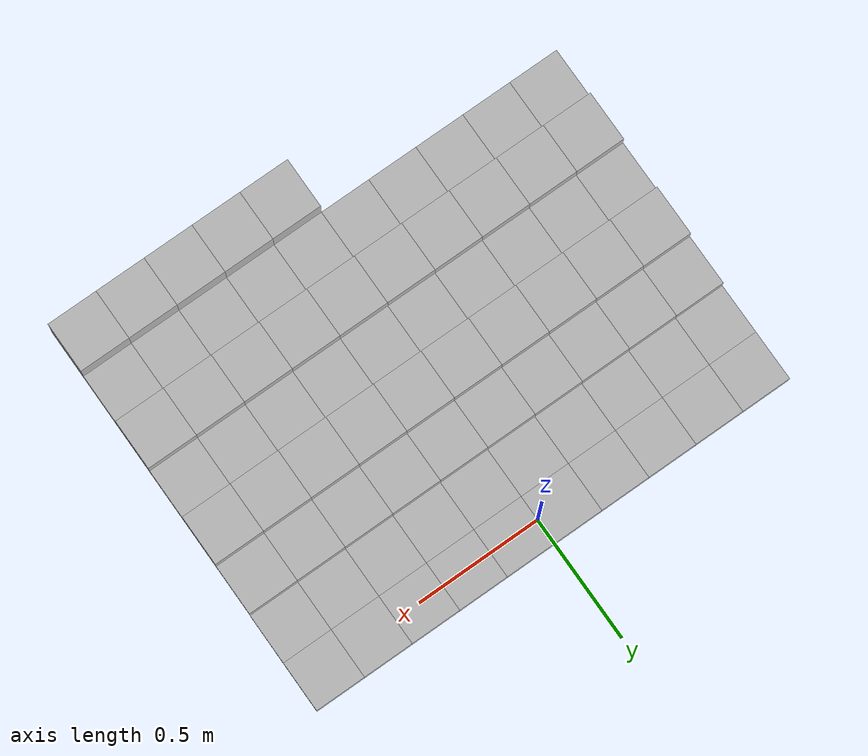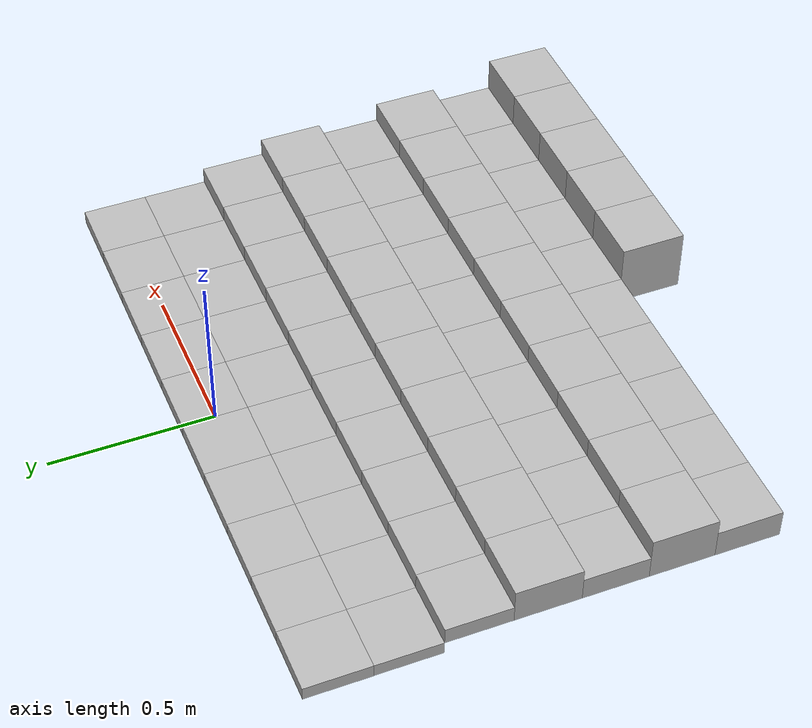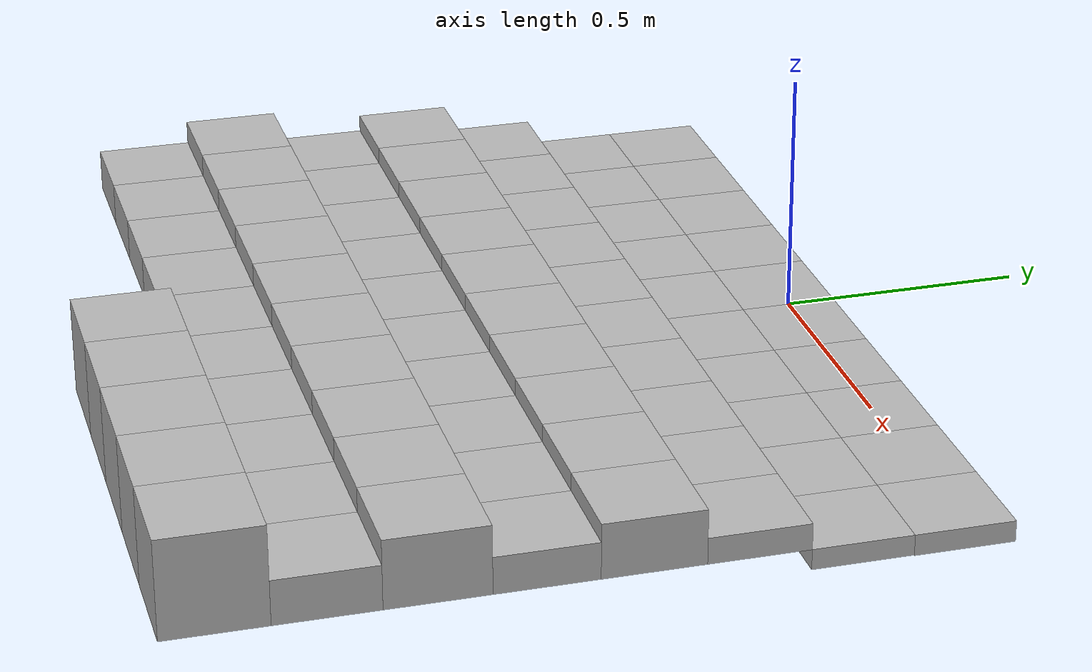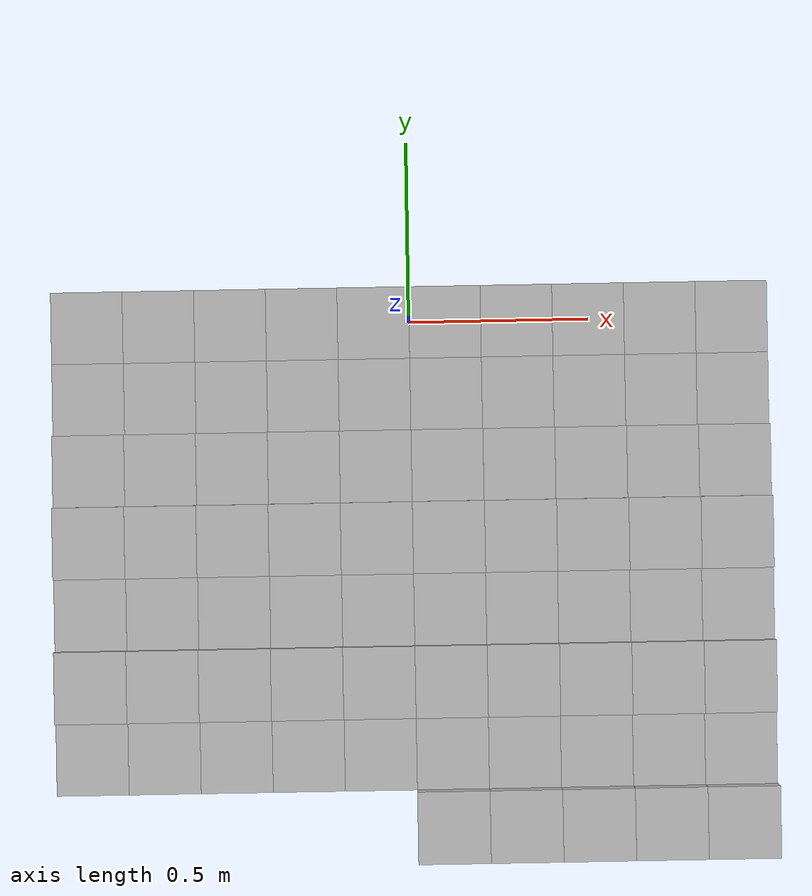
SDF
<sdf version="1.6">
 <model name="Terrain">
  <static>true</static>
  <link name="box_0_0">
   <pose>-0.9 0.0 -0.0216415756168 0 0 0</pose>
   <inertial>
    <mass>1.0</mass>
    <inertia><ixx>0.0</ixx><ixy>0.0</ixy><ixz>0.0</ixz><iyy>0.0</iyy><iyz>0.0</iyz><izz>0.0</izz></inertia>
   </inertial>
   <collision name="collision"><geometry><box><size>0.2 0.2 -0.0432831512336</size></box></geometry></collision>
   <visual name="visual"><geometry><box><size>0.2 0.2 -0.0432831512336</size></box></geometry></visual>
  </link>
  <link name="box_0_1">
   <pose>-0.7 0.0 -0.0216415756168 0 0 0</pose>
   <inertial>
    <mass>1.0</mass>
    <inertia><ixx>0.0</ixx><ixy>0.0</ixy><ixz>0.0</ixz><iyy>0.0</iyy><iyz>0.0</iyz><izz>0.0</izz></inertia>
   </inertial>
   <collision name="collision"><geometry><box><size>0.2 0.2 -0.0432831512336</size></box></geometry></collision>
   <visual name="visual"><geometry><box><size>0.2 0.2 -0.0432831512336</size></box></geometry></visual>
  </link>
  <link name="box_0_2">
   <pose>-0.5 0.0 -0.0216415756168 0 0 0</pose>
   <inertial>
    <mass>1.0</mass>
    <inertia><ixx>0.0</ixx><ixy>0.0</ixy><ixz>0.0</ixz><iyy>0.0</iyy><iyz>0.0</iyz><izz>0.0</izz></inertia>
   </inertial>
   <collision name="collision"><geometry><box><size>0.2 0.2 -0.0432831512336</size></box></geometry></collision>
   <visual name="visual"><geometry><box><size>0.2 0.2 -0.0432831512336</size></box></geometry></visual>
  </link>
  <link name="box_0_3">
   <pose>-0.3 0.0 -0.0216415756168 0 0 0</pose>
   <inertial>
    <mass>1.0</mass>
    <inertia><ixx>0.0</ixx><ixy>0.0</ixy><ixz>0.0</ixz><iyy>0.0</iyy><iyz>0.0</iyz><izz>0.0</izz></inertia>
   </inertial>
   <collision name="collision"><geometry><box><size>0.2 0.2 -0.0432831512336</size></box></geometry></collision>
   <visual name="visual"><geometry><box><size>0.2 0.2 -0.0432831512336</size></box></geometry></visual>
  </link>
  <link name="box_0_4">
   <pose>-0.1 0.0 -0.0216415756168 0 0 0</pose>
   <inertial>
    <mass>1.0</mass>
    <inertia><ixx>0.0</ixx><ixy>0.0</ixy><ixz>0.0</ixz><iyy>0.0</iyy><iyz>0.0</iyz><izz>0.0</izz></inertia>
   </inertial>
   <collision name="collision"><geometry><box><size>0.2 0.2 -0.0432831512336</size></box></geometry></collision>
   <visual name="visual"><geometry><box><size>0.2 0.2 -0.0432831512336</size></box></geometry></visual>
  </link>
  <link name="box_0_5">
   <pose>0.1 0.0 -0.0216415756168 0 0 0</pose>
   <inertial>
    <mass>1.0</mass>
    <inertia><ixx>0.0</ixx><ixy>0.0</ixy><ixz>0.0</ixz><iyy>0.0</iyy><iyz>0.0</iyz><izz>0.0</izz></inertia>
   </inertial>
   <collision name="collision"><geometry><box><size>0.2 0.2 -0.0432831512336</size></box></geometry></collision>
   <visual name="visual"><geometry><box><size>0.2 0.2 -0.0432831512336</size></box></geometry></visual>
  </link>
  <link name="box_0_6">
   <pose>0.3 0.0 -0.0216415756168 0 0 0</pose>
   <inertial>
    <mass>1.0</mass>
    <inertia><ixx>0.0</ixx><ixy>0.0</ixy><ixz>0.0</ixz><iyy>0.0</iyy><iyz>0.0</iyz><izz>0.0</izz></inertia>
   </inertial>
   <collision name="collision"><geometry><box><size>0.2 0.2 -0.0432831512336</size></box></geometry></collision>
   <visual name="visual"><geometry><box><size>0.2 0.2 -0.0432831512336</size></box></geometry></visual>
  </link>
  <link name="box_0_7">
   <pose>0.5 0.0 -0.0216415756168 0 0 0</pose>
   <inertial>
    <mass>1.0</mass>
    <inertia><ixx>0.0</ixx><ixy>0.0</ixy><ixz>0.0</ixz><iyy>0.0</iyy><iyz>0.0</iyz><izz>0.0</izz></inertia>
   </inertial>
   <collision name="collision"><geometry><box><size>0.2 0.2 -0.0432831512336</size></box></geometry></collision>
   <visual name="visual"><geometry><box><size>0.2 0.2 -0.0432831512336</size></box></geometry></visual>
  </link>
  <link name="box_0_8">
   <pose>0.7 0.0 -0.0216415756168 0 0 0</pose>
   <inertial>
    <mass>1.0</mass>
    <inertia><ixx>0.0</ixx><ixy>0.0</ixy><ixz>0.0</ixz><iyy>0.0</iyy><iyz>0.0</iyz><izz>0.0</izz></inertia>
   </inertial>
   <collision name="collision"><geometry><box><size>0.2 0.2 -0.0432831512336</size></box></geometry></collision>
   <visual name="visual"><geometry><box><size>0.2 0.2 -0.0432831512336</size></box></geometry></visual>
  </link>
  <link name="box_0_9">
   <pose>0.9 0.0 -0.0216415756168 0 0 0</pose>
   <inertial>
    <mass>1.0</mass>
    <inertia><ixx>0.0</ixx><ixy>0.0</ixy><ixz>0.0</ixz><iyy>0.0</iyy><iyz>0.0</iyz><izz>0.0</izz></inertia>
   </inertial>
   <collision name="collision"><geometry><box><size>0.2 0.2 -0.0432831512336</size></box></geometry></collision>
   <visual name="visual"><geometry><box><size>0.2 0.2 -0.0432831512336</size></box></geometry></visual>
  </link>
  <link name="box_1_0">
   <pose>-0.9 -0.2 -0.0210327159293 0 0 0</pose>
   <inertial>
    <mass>1.0</mass>
    <inertia><ixx>0.0</ixx><ixy>0.0</ixy><ixz>0.0</ixz><iyy>0.0</iyy><iyz>0.0</iyz><izz>0.0</izz></inertia>
   </inertial>
   <collision name="collision"><geometry><box><size>0.2 0.2 -0.0420654318587</size></box></geometry></collision>
   <visual name="visual"><geometry><box><size>0.2 0.2 -0.0420654318587</size></box></geometry></visual>
  </link>
  <link name="box_1_1">
   <pose>-0.7 -0.2 -0.0210327159293 0 0 0</pose>
   <inertial>
    <mass>1.0</mass>
    <inertia><ixx>0.0</ixx><ixy>0.0</ixy><ixz>0.0</ixz><iyy>0.0</iyy><iyz>0.0</iyz><izz>0.0</izz></inertia>
   </inertial>
   <collision name="collision"><geometry><box><size>0.2 0.2 -0.0420654318587</size></box></geometry></collision>
   <visual name="visual"><geometry><box><size>0.2 0.2 -0.0420654318587</size></box></geometry></visual>
  </link>
  <link name="box_1_2">
   <pose>-0.5 -0.2 -0.0210327159293 0 0 0</pose>
   <inertial>
    <mass>1.0</mass>
    <inertia><ixx>0.0</ixx><ixy>0.0</ixy><ixz>0.0</ixz><iyy>0.0</iyy><iyz>0.0</iyz><izz>0.0</izz></inertia>
   </inertial>
   <collision name="collision"><geometry><box><size>0.2 0.2 -0.0420654318587</size></box></geometry></collision>
   <visual name="visual"><geometry><box><size>0.2 0.2 -0.0420654318587</size></box></geometry></visual>
  </link>
  <link name="box_1_3">
   <pose>-0.3 -0.2 -0.0210327159293 0 0 0</pose>
   <inertial>
    <mass>1.0</mass>
    <inertia><ixx>0.0</ixx><ixy>0.0</ixy><ixz>0.0</ixz><iyy>0.0</iyy><iyz>0.0</iyz><izz>0.0</izz></inertia>
   </inertial>
   <collision name="collision"><geometry><box><size>0.2 0.2 -0.0420654318587</size></box></geometry></collision>
   <visual name="visual"><geometry><box><size>0.2 0.2 -0.0420654318587</size></box></geometry></visual>
  </link>
  <link name="box_1_4">
   <pose>-0.1 -0.2 -0.0210327159293 0 0 0</pose>
   <inertial>
    <mass>1.0</mass>
    <inertia><ixx>0.0</ixx><ixy>0.0</ixy><ixz>0.0</ixz><iyy>0.0</iyy><iyz>0.0</iyz><izz>0.0</izz></inertia>
   </inertial>
   <collision name="collision"><geometry><box><size>0.2 0.2 -0.0420654318587</size></box></geometry></collision>
   <visual name="visual"><geometry><box><size>0.2 0.2 -0.0420654318587</size></box></geometry></visual>
  </link>
  <link name="box_1_5">
   <pose>0.1 -0.2 -0.0210327159293 0 0 0</pose>
   <inertial>
    <mass>1.0</mass>
    <inertia><ixx>0.0</ixx><ixy>0.0</ixy><ixz>0.0</ixz><iyy>0.0</iyy><iyz>0.0</iyz><izz>0.0</izz></inertia>
   </inertial>
   <collision name="collision"><geometry><box><size>0.2 0.2 -0.0420654318587</size></box></geometry></collision>
   <visual name="visual"><geometry><box><size>0.2 0.2 -0.0420654318587</size></box></geometry></visual>
  </link>
  <link name="box_1_6">
   <pose>0.3 -0.2 -0.0210327159293 0 0 0</pose>
   <inertial>
    <mass>1.0</mass>
    <inertia><ixx>0.0</ixx><ixy>0.0</ixy><ixz>0.0</ixz><iyy>0.0</iyy><iyz>0.0</iyz><izz>0.0</izz></inertia>
   </inertial>
   <collision name="collision"><geometry><box><size>0.2 0.2 -0.0420654318587</size></box></geometry></collision>
   <visual name="visual"><geometry><box><size>0.2 0.2 -0.0420654318587</size></box></geometry></visual>
  </link>
  <link name="box_1_7">
   <pose>0.5 -0.2 -0.0210327159293 0 0 0</pose>
   <inertial>
    <mass>1.0</mass>
    <inertia><ixx>0.0</ixx><ixy>0.0</ixy><ixz>0.0</ixz><iyy>0.0</iyy><iyz>0.0</iyz><izz>0.0</izz></inertia>
   </inertial>
   <collision name="collision"><geometry><box><size>0.2 0.2 -0.0420654318587</size></box></geometry></collision>
   <visual name="visual"><geometry><box><size>0.2 0.2 -0.0420654318587</size></box></geometry></visual>
  </link>
  <link name="box_1_8">
   <pose>0.7 -0.2 -0.0210327159293 0 0 0</pose>
   <inertial>
    <mass>1.0</mass>
    <inertia><ixx>0.0</ixx><ixy>0.0</ixy><ixz>0.0</ixz><iyy>0.0</iyy><iyz>0.0</iyz><izz>0.0</izz></inertia>
   </inertial>
   <collision name="collision"><geometry><box><size>0.2 0.2 -0.0420654318587</size></box></geometry></collision>
   <visual name="visual"><geometry><box><size>0.2 0.2 -0.0420654318587</size></box></geometry></visual>
  </link>
  <link name="box_1_9">
   <pose>0.9 -0.2 -0.0210327159293 0 0 0</pose>
   <inertial>
    <mass>1.0</mass>
    <inertia><ixx>0.0</ixx><ixy>0.0</ixy><ixz>0.0</ixz><iyy>0.0</iyy><iyz>0.0</iyz><izz>0.0</izz></inertia>
   </inertial>
   <collision name="collision"><geometry><box><size>0.2 0.2 -0.0420654318587</size></box></geometry></collision>
   <visual name="visual"><geometry><box><size>0.2 0.2 -0.0420654318587</size></box></geometry></visual>
  </link>
  <link name="box_2_0">
   <pose>-0.9 -0.4 0.0268966023082 0 0 0</pose>
   <inertial>
    <mass>1.0</mass>
    <inertia><ixx>0.0</ixx><ixy>0.0</ixy><ixz>0.0</ixz><iyy>0.0</iyy><iyz>0.0</iyz><izz>0.0</izz></inertia>
   </inertial>
   <collision name="collision"><geometry><box><size>0.2 0.2 0.0537932046164</size></box></geometry></collision>
   <visual name="visual"><geometry><box><size>0.2 0.2 0.0537932046164</size></box></geometry></visual>
  </link>
  <link name="box_2_1">
   <pose>-0.7 -0.4 0.0268966023082 0 0 0</pose>
   <inertial>
    <mass>1.0</mass>
    <inertia><ixx>0.0</ixx><ixy>0.0</ixy><ixz>0.0</ixz><iyy>0.0</iyy><iyz>0.0</iyz><izz>0.0</izz></inertia>
   </inertial>
   <collision name="collision"><geometry><box><size>0.2 0.2 0.0537932046164</size></box></geometry></collision>
   <visual name="visual"><geometry><box><size>0.2 0.2 0.0537932046164</size></box></geometry></visual>
  </link>
  <link name="box_2_2">
   <pose>-0.5 -0.4 0.0268966023082 0 0 0</pose>
   <inertial>
    <mass>1.0</mass>
    <inertia><ixx>0.0</ixx><ixy>0.0</ixy><ixz>0.0</ixz><iyy>0.0</iyy><iyz>0.0</iyz><izz>0.0</izz></inertia>
   </inertial>
   <collision name="collision"><geometry><box><size>0.2 0.2 0.0537932046164</size></box></geometry></collision>
   <visual name="visual"><geometry><box><size>0.2 0.2 0.0537932046164</size></box></geometry></visual>
  </link>
  <link name="box_2_3">
   <pose>-0.3 -0.4 0.0268966023082 0 0 0</pose>
   <inertial>
    <mass>1.0</mass>
    <inertia><ixx>0.0</ixx><ixy>0.0</ixy><ixz>0.0</ixz><iyy>0.0</iyy><iyz>0.0</iyz><izz>0.0</izz></inertia>
   </inertial>
   <collision name="collision"><geometry><box><size>0.2 0.2 0.0537932046164</size></box></geometry></collision>
   <visual name="visual"><geometry><box><size>0.2 0.2 0.0537932046164</size></box></geometry></visual>
  </link>
  <link name="box_2_4">
   <pose>-0.1 -0.4 0.0268966023082 0 0 0</pose>
   <inertial>
    <mass>1.0</mass>
    <inertia><ixx>0.0</ixx><ixy>0.0</ixy><ixz>0.0</ixz><iyy>0.0</iyy><iyz>0.0</iyz><izz>0.0</izz></inertia>
   </inertial>
   <collision name="collision"><geometry><box><size>0.2 0.2 0.0537932046164</size></box></geometry></collision>
   <visual name="visual"><geometry><box><size>0.2 0.2 0.0537932046164</size></box></geometry></visual>
  </link>
  <link name="box_2_5">
   <pose>0.1 -0.4 0.0268966023082 0 0 0</pose>
   <inertial>
    <mass>1.0</mass>
    <inertia><ixx>0.0</ixx><ixy>0.0</ixy><ixz>0.0</ixz><iyy>0.0</iyy><iyz>0.0</iyz><izz>0.0</izz></inertia>
   </inertial>
   <collision name="collision"><geometry><box><size>0.2 0.2 0.0537932046164</size></box></geometry></collision>
   <visual name="visual"><geometry><box><size>0.2 0.2 0.0537932046164</size></box></geometry></visual>
  </link>
  <link name="box_2_6">
   <pose>0.3 -0.4 0.0268966023082 0 0 0</pose>
   <inertial>
    <mass>1.0</mass>
    <inertia><ixx>0.0</ixx><ixy>0.0</ixy><ixz>0.0</ixz><iyy>0.0</iyy><iyz>0.0</iyz><izz>0.0</izz></inertia>
   </inertial>
   <collision name="collision"><geometry><box><size>0.2 0.2 0.0537932046164</size></box></geometry></collision>
   <visual name="visual"><geometry><box><size>0.2 0.2 0.0537932046164</size></box></geometry></visual>
  </link>
  <link name="box_2_7">
   <pose>0.5 -0.4 0.0268966023082 0 0 0</pose>
   <inertial>
    <mass>1.0</mass>
    <inertia><ixx>0.0</ixx><ixy>0.0</ixy><ixz>0.0</ixz><iyy>0.0</iyy><iyz>0.0</iyz><izz>0.0</izz></inertia>
   </inertial>
   <collision name="collision"><geometry><box><size>0.2 0.2 0.0537932046164</size></box></geometry></collision>
   <visual name="visual"><geometry><box><size>0.2 0.2 0.0537932046164</size></box></geometry></visual>
  </link>
  <link name="box_2_8">
   <pose>0.7 -0.4 0.0268966023082 0 0 0</pose>
   <inertial>
    <mass>1.0</mass>
    <inertia><ixx>0.0</ixx><ixy>0.0</ixy><ixz>0.0</ixz><iyy>0.0</iyy><iyz>0.0</iyz><izz>0.0</izz></inertia>
   </inertial>
   <collision name="collision"><geometry><box><size>0.2 0.2 0.0537932046164</size></box></geometry></collision>
   <visual name="visual"><geometry><box><size>0.2 0.2 0.0537932046164</size></box></geometry></visual>
  </link>
  <link name="box_2_9">
   <pose>0.9 -0.4 0.0268966023082 0 0 0</pose>
   <inertial>
    <mass>1.0</mass>
    <inertia><ixx>0.0</ixx><ixy>0.0</ixy><ixz>0.0</ixz><iyy>0.0</iyy><iyz>0.0</iyz><izz>0.0</izz></inertia>
   </inertial>
   <collision name="collision"><geometry><box><size>0.2 0.2 0.0537932046164</size></box></geometry></collision>
   <visual name="visual"><geometry><box><size>0.2 0.2 0.0537932046164</size></box></geometry></visual>
  </link>
  <link name="box_3_0">
   <pose>-0.9 -0.6 0.0562313552899 0 0 0</pose>
   <inertial>
    <mass>1.0</mass>
    <inertia><ixx>0.0</ixx><ixy>0.0</ixy><ixz>0.0</ixz><iyy>0.0</iyy><iyz>0.0</iyz><izz>0.0</izz></inertia>
   </inertial>
   <collision name="collision"><geometry><box><size>0.2 0.2 0.11246271058</size></box></geometry></collision>
   <visual name="visual"><geometry><box><size>0.2 0.2 0.11246271058</size></box></geometry></visual>
  </link>
  <link name="box_3_1">
   <pose>-0.7 -0.6 0.0562313552899 0 0 0</pose>
   <inertial>
    <mass>1.0</mass>
    <inertia><ixx>0.0</ixx><ixy>0.0</ixy><ixz>0.0</ixz><iyy>0.0</iyy><iyz>0.0</iyz><izz>0.0</izz></inertia>
   </inertial>
   <collision name="collision"><geometry><box><size>0.2 0.2 0.11246271058</size></box></geometry></collision>
   <visual name="visual"><geometry><box><size>0.2 0.2 0.11246271058</size></box></geometry></visual>
  </link>
  <link name="box_3_2">
   <pose>-0.5 -0.6 0.0562313552899 0 0 0</pose>
   <inertial>
    <mass>1.0</mass>
    <inertia><ixx>0.0</ixx><ixy>0.0</ixy><ixz>0.0</ixz><iyy>0.0</iyy><iyz>0.0</iyz><izz>0.0</izz></inertia>
   </inertial>
   <collision name="collision"><geometry><box><size>0.2 0.2 0.11246271058</size></box></geometry></collision>
   <visual name="visual"><geometry><box><size>0.2 0.2 0.11246271058</size></box></geometry></visual>
  </link>
  <link name="box_3_3">
   <pose>-0.3 -0.6 0.0562313552899 0 0 0</pose>
   <inertial>
    <mass>1.0</mass>
    <inertia><ixx>0.0</ixx><ixy>0.0</ixy><ixz>0.0</ixz><iyy>0.0</iyy><iyz>0.0</iyz><izz>0.0</izz></inertia>
   </inertial>
   <collision name="collision"><geometry><box><size>0.2 0.2 0.11246271058</size></box></geometry></collision>
   <visual name="visual"><geometry><box><size>0.2 0.2 0.11246271058</size></box></geometry></visual>
  </link>
  <link name="box_3_4">
   <pose>-0.1 -0.6 0.0562313552899 0 0 0</pose>
   <inertial>
    <mass>1.0</mass>
    <inertia><ixx>0.0</ixx><ixy>0.0</ixy><ixz>0.0</ixz><iyy>0.0</iyy><iyz>0.0</iyz><izz>0.0</izz></inertia>
   </inertial>
   <collision name="collision"><geometry><box><size>0.2 0.2 0.11246271058</size></box></geometry></collision>
   <visual name="visual"><geometry><box><size>0.2 0.2 0.11246271058</size></box></geometry></visual>
  </link>
  <link name="box_3_5">
   <pose>0.1 -0.6 0.0562313552899 0 0 0</pose>
   <inertial>
    <mass>1.0</mass>
    <inertia><ixx>0.0</ixx><ixy>0.0</ixy><ixz>0.0</ixz><iyy>0.0</iyy><iyz>0.0</iyz><izz>0.0</izz></inertia>
   </inertial>
   <collision name="collision"><geometry><box><size>0.2 0.2 0.11246271058</size></box></geometry></collision>
   <visual name="visual"><geometry><box><size>0.2 0.2 0.11246271058</size></box></geometry></visual>
  </link>
  <link name="box_3_6">
   <pose>0.3 -0.6 0.0562313552899 0 0 0</pose>
   <inertial>
    <mass>1.0</mass>
    <inertia><ixx>0.0</ixx><ixy>0.0</ixy><ixz>0.0</ixz><iyy>0.0</iyy><iyz>0.0</iyz><izz>0.0</izz></inertia>
   </inertial>
   <collision name="collision"><geometry><box><size>0.2 0.2 0.11246271058</size></box></geometry></collision>
   <visual name="visual"><geometry><box><size>0.2 0.2 0.11246271058</size></box></geometry></visual>
  </link>
  <link name="box_3_7">
   <pose>0.5 -0.6 0.0562313552899 0 0 0</pose>
   <inertial>
    <mass>1.0</mass>
    <inertia><ixx>0.0</ixx><ixy>0.0</ixy><ixz>0.0</ixz><iyy>0.0</iyy><iyz>0.0</iyz><izz>0.0</izz></inertia>
   </inertial>
   <collision name="collision"><geometry><box><size>0.2 0.2 0.11246271058</size></box></geometry></collision>
   <visual name="visual"><geometry><box><size>0.2 0.2 0.11246271058</size></box></geometry></visual>
  </link>
  <link name="box_3_8">
   <pose>0.7 -0.6 0.0562313552899 0 0 0</pose>
   <inertial>
    <mass>1.0</mass>
    <inertia><ixx>0.0</ixx><ixy>0.0</ixy><ixz>0.0</ixz><iyy>0.0</iyy><iyz>0.0</iyz><izz>0.0</izz></inertia>
   </inertial>
   <collision name="collision"><geometry><box><size>0.2 0.2 0.11246271058</size></box></geometry></collision>
   <visual name="visual"><geometry><box><size>0.2 0.2 0.11246271058</size></box></geometry></visual>
  </link>
  <link name="box_3_9">
   <pose>0.9 -0.6 0.0562313552899 0 0 0</pose>
   <inertial>
    <mass>1.0</mass>
    <inertia><ixx>0.0</ixx><ixy>0.0</ixy><ixz>0.0</ixz><iyy>0.0</iyy><iyz>0.0</iyz><izz>0.0</izz></inertia>
   </inertial>
   <collision name="collision"><geometry><box><size>0.2 0.2 0.11246271058</size></box></geometry></collision>
   <visual name="visual"><geometry><box><size>0.2 0.2 0.11246271058</size></box></geometry></visual>
  </link>
  <link name="box_4_0">
   <pose>-0.9 -0.8 0.0378319859019 0 0 0</pose>
   <inertial>
    <mass>1.0</mass>
    <inertia><ixx>0.0</ixx><ixy>0.0</ixy><ixz>0.0</ixz><iyy>0.0</iyy><iyz>0.0</iyz><izz>0.0</izz></inertia>
   </inertial>
   <collision name="collision"><geometry><box><size>0.2 0.2 0.0756639718039</size></box></geometry></collision>
   <visual name="visual"><geometry><box><size>0.2 0.2 0.0756639718039</size></box></geometry></visual>
  </link>
  <link name="box_4_1">
   <pose>-0.7 -0.8 0.0378319859019 0 0 0</pose>
   <inertial>
    <mass>1.0</mass>
    <inertia><ixx>0.0</ixx><ixy>0.0</ixy><ixz>0.0</ixz><iyy>0.0</iyy><iyz>0.0</iyz><izz>0.0</izz></inertia>
   </inertial>
   <collision name="collision"><geometry><box><size>0.2 0.2 0.0756639718039</size></box></geometry></collision>
   <visual name="visual"><geometry><box><size>0.2 0.2 0.0756639718039</size></box></geometry></visual>
  </link>
  <link name="box_4_2">
   <pose>-0.5 -0.8 0.0378319859019 0 0 0</pose>
   <inertial>
    <mass>1.0</mass>
    <inertia><ixx>0.0</ixx><ixy>0.0</ixy><ixz>0.0</ixz><iyy>0.0</iyy><iyz>0.0</iyz><izz>0.0</izz></inertia>
   </inertial>
   <collision name="collision"><geometry><box><size>0.2 0.2 0.0756639718039</size></box></geometry></collision>
   <visual name="visual"><geometry><box><size>0.2 0.2 0.0756639718039</size></box></geometry></visual>
  </link>
  <link name="box_4_3">
   <pose>-0.3 -0.8 0.0378319859019 0 0 0</pose>
   <inertial>
    <mass>1.0</mass>
    <inertia><ixx>0.0</ixx><ixy>0.0</ixy><ixz>0.0</ixz><iyy>0.0</iyy><iyz>0.0</iyz><izz>0.0</izz></inertia>
   </inertial>
   <collision name="collision"><geometry><box><size>0.2 0.2 0.0756639718039</size></box></geometry></collision>
   <visual name="visual"><geometry><box><size>0.2 0.2 0.0756639718039</size></box></geometry></visual>
  </link>
  <link name="box_4_4">
   <pose>-0.1 -0.8 0.0378319859019 0 0 0</pose>
   <inertial>
    <mass>1.0</mass>
    <inertia><ixx>0.0</ixx><ixy>0.0</ixy><ixz>0.0</ixz><iyy>0.0</iyy><iyz>0.0</iyz><izz>0.0</izz></inertia>
   </inertial>
   <collision name="collision"><geometry><box><size>0.2 0.2 0.0756639718039</size></box></geometry></collision>
   <visual name="visual"><geometry><box><size>0.2 0.2 0.0756639718039</size></box></geometry></visual>
  </link>
  <link name="box_4_5">
   <pose>0.1 -0.8 0.0378319859019 0 0 0</pose>
   <inertial>
    <mass>1.0</mass>
    <inertia><ixx>0.0</ixx><ixy>0.0</ixy><ixz>0.0</ixz><iyy>0.0</iyy><iyz>0.0</iyz><izz>0.0</izz></inertia>
   </inertial>
   <collision name="collision"><geometry><box><size>0.2 0.2 0.0756639718039</size></box></geometry></collision>
   <visual name="visual"><geometry><box><size>0.2 0.2 0.0756639718039</size></box></geometry></visual>
  </link>
  <link name="box_4_6">
   <pose>0.3 -0.8 0.0378319859019 0 0 0</pose>
   <inertial>
    <mass>1.0</mass>
    <inertia><ixx>0.0</ixx><ixy>0.0</ixy><ixz>0.0</ixz><iyy>0.0</iyy><iyz>0.0</iyz><izz>0.0</izz></inertia>
   </inertial>
   <collision name="collision"><geometry><box><size>0.2 0.2 0.0756639718039</size></box></geometry></collision>
   <visual name="visual"><geometry><box><size>0.2 0.2 0.0756639718039</size></box></geometry></visual>
  </link>
  <link name="box_4_7">
   <pose>0.5 -0.8 0.0378319859019 0 0 0</pose>
   <inertial>
    <mass>1.0</mass>
    <inertia><ixx>0.0</ixx><ixy>0.0</ixy><ixz>0.0</ixz><iyy>0.0</iyy><iyz>0.0</iyz><izz>0.0</izz></inertia>
   </inertial>
   <collision name="collision"><geometry><box><size>0.2 0.2 0.0756639718039</size></box></geometry></collision>
   <visual name="visual"><geometry><box><size>0.2 0.2 0.0756639718039</size></box></geometry></visual>
  </link>
  <link name="box_4_8">
   <pose>0.7 -0.8 0.0378319859019 0 0 0</pose>
   <inertial>
    <mass>1.0</mass>
    <inertia><ixx>0.0</ixx><ixy>0.0</ixy><ixz>0.0</ixz><iyy>0.0</iyy><iyz>0.0</iyz><izz>0.0</izz></inertia>
   </inertial>
   <collision name="collision"><geometry><box><size>0.2 0.2 0.0756639718039</size></box></geometry></collision>
   <visual name="visual"><geometry><box><size>0.2 0.2 0.0756639718039</size></box></geometry></visual>
  </link>
  <link name="box_4_9">
   <pose>0.9 -0.8 0.0378319859019 0 0 0</pose>
   <inertial>
    <mass>1.0</mass>
    <inertia><ixx>0.0</ixx><ixy>0.0</ixy><ixz>0.0</ixz><iyy>0.0</iyy><iyz>0.0</iyz><izz>0.0</izz></inertia>
   </inertial>
   <collision name="collision"><geometry><box><size>0.2 0.2 0.0756639718039</size></box></geometry></collision>
   <visual name="visual"><geometry><box><size>0.2 0.2 0.0756639718039</size></box></geometry></visual>
  </link>
  <link name="box_5_0">
   <pose>-0.9 -1.0 0.070276344705 0 0 0</pose>
   <inertial>
    <mass>1.0</mass>
    <inertia><ixx>0.0</ixx><ixy>0.0</ixy><ixz>0.0</ixz><iyy>0.0</iyy><iyz>0.0</iyz><izz>0.0</izz></inertia>
   </inertial>
   <collision name="collision"><geometry><box><size>0.2 0.2 0.14055268941</size></box></geometry></collision>
   <visual name="visual"><geometry><box><size>0.2 0.2 0.14055268941</size></box></geometry></visual>
  </link>
  <link name="box_5_1">
   <pose>-0.7 -1.0 0.070276344705 0 0 0</pose>
   <inertial>
    <mass>1.0</mass>
    <inertia><ixx>0.0</ixx><ixy>0.0</ixy><ixz>0.0</ixz><iyy>0.0</iyy><iyz>0.0</iyz><izz>0.0</izz></inertia>
   </inertial>
   <collision name="collision"><geometry><box><size>0.2 0.2 0.14055268941</size></box></geometry></collision>
   <visual name="visual"><geometry><box><size>0.2 0.2 0.14055268941</size></box></geometry></visual>
  </link>
  <link name="box_5_2">
   <pose>-0.5 -1.0 0.070276344705 0 0 0</pose>
   <inertial>
    <mass>1.0</mass>
    <inertia><ixx>0.0</ixx><ixy>0.0</ixy><ixz>0.0</ixz><iyy>0.0</iyy><iyz>0.0</iyz><izz>0.0</izz></inertia>
   </inertial>
   <collision name="collision"><geometry><box><size>0.2 0.2 0.14055268941</size></box></geometry></collision>
   <visual name="visual"><geometry><box><size>0.2 0.2 0.14055268941</size></box></geometry></visual>
  </link>
  <link name="box_5_3">
   <pose>-0.3 -1.0 0.070276344705 0 0 0</pose>
   <inertial>
    <mass>1.0</mass>
    <inertia><ixx>0.0</ixx><ixy>0.0</ixy><ixz>0.0</ixz><iyy>0.0</iyy><iyz>0.0</iyz><izz>0.0</izz></inertia>
   </inertial>
   <collision name="collision"><geometry><box><size>0.2 0.2 0.14055268941</size></box></geometry></collision>
   <visual name="visual"><geometry><box><size>0.2 0.2 0.14055268941</size></box></geometry></visual>
  </link>
  <link name="box_5_4">
   <pose>-0.1 -1.0 0.070276344705 0 0 0</pose>
   <inertial>
    <mass>1.0</mass>
    <inertia><ixx>0.0</ixx><ixy>0.0</ixy><ixz>0.0</ixz><iyy>0.0</iyy><iyz>0.0</iyz><izz>0.0</izz></inertia>
   </inertial>
   <collision name="collision"><geometry><box><size>0.2 0.2 0.14055268941</size></box></geometry></collision>
   <visual name="visual"><geometry><box><size>0.2 0.2 0.14055268941</size></box></geometry></visual>
  </link>
  <link name="box_5_5">
   <pose>0.1 -1.0 0.070276344705 0 0 0</pose>
   <inertial>
    <mass>1.0</mass>
    <inertia><ixx>0.0</ixx><ixy>0.0</ixy><ixz>0.0</ixz><iyy>0.0</iyy><iyz>0.0</iyz><izz>0.0</izz></inertia>
   </inertial>
   <collision name="collision"><geometry><box><size>0.2 0.2 0.14055268941</size></box></geometry></collision>
   <visual name="visual"><geometry><box><size>0.2 0.2 0.14055268941</size></box></geometry></visual>
  </link>
  <link name="box_5_6">
   <pose>0.3 -1.0 0.070276344705 0 0 0</pose>
   <inertial>
    <mass>1.0</mass>
    <inertia><ixx>0.0</ixx><ixy>0.0</ixy><ixz>0.0</ixz><iyy>0.0</iyy><iyz>0.0</iyz><izz>0.0</izz></inertia>
   </inertial>
   <collision name="collision"><geometry><box><size>0.2 0.2 0.14055268941</size></box></geometry></collision>
   <visual name="visual"><geometry><box><size>0.2 0.2 0.14055268941</size></box></geometry></visual>
  </link>
  <link name="box_5_7">
   <pose>0.5 -1.0 0.070276344705 0 0 0</pose>
   <inertial>
    <mass>1.0</mass>
    <inertia><ixx>0.0</ixx><ixy>0.0</ixy><ixz>0.0</ixz><iyy>0.0</iyy><iyz>0.0</iyz><izz>0.0</izz></inertia>
   </inertial>
   <collision name="collision"><geometry><box><size>0.2 0.2 0.14055268941</size></box></geometry></collision>
   <visual name="visual"><geometry><box><size>0.2 0.2 0.14055268941</size></box></geometry></visual>
  </link>
  <link name="box_5_8">
   <pose>0.7 -1.0 0.070276344705 0 0 0</pose>
   <inertial>
    <mass>1.0</mass>
    <inertia><ixx>0.0</ixx><ixy>0.0</ixy><ixz>0.0</ixz><iyy>0.0</iyy><iyz>0.0</iyz><izz>0.0</izz></inertia>
   </inertial>
   <collision name="collision"><geometry><box><size>0.2 0.2 0.14055268941</size></box></geometry></collision>
   <visual name="visual"><geometry><box><size>0.2 0.2 0.14055268941</size></box></geometry></visual>
  </link>
  <link name="box_5_9">
   <pose>0.9 -1.0 0.070276344705 0 0 0</pose>
   <inertial>
    <mass>1.0</mass>
    <inertia><ixx>0.0</ixx><ixy>0.0</ixy><ixz>0.0</ixz><iyy>0.0</iyy><iyz>0.0</iyz><izz>0.0</izz></inertia>
   </inertial>
   <collision name="collision"><geometry><box><size>0.2 0.2 0.14055268941</size></box></geometry></collision>
   <visual name="visual"><geometry><box><size>0.2 0.2 0.14055268941</size></box></geometry></visual>
  </link>
  <link name="box_6_0">
   <pose>-0.9 -1.2 0.0453198070439 0 0 0</pose>
   <inertial>
    <mass>1.0</mass>
    <inertia><ixx>0.0</ixx><ixy>0.0</ixy><ixz>0.0</ixz><iyy>0.0</iyy><iyz>0.0</iyz><izz>0.0</izz></inertia>
   </inertial>
   <collision name="collision"><geometry><box><size>0.2 0.2 0.0906396140878</size></box></geometry></collision>
   <visual name="visual"><geometry><box><size>0.2 0.2 0.0906396140878</size></box></geometry></visual>
  </link>
  <link name="box_6_1">
   <pose>-0.7 -1.2 0.0453198070439 0 0 0</pose>
   <inertial>
    <mass>1.0</mass>
    <inertia><ixx>0.0</ixx><ixy>0.0</ixy><ixz>0.0</ixz><iyy>0.0</iyy><iyz>0.0</iyz><izz>0.0</izz></inertia>
   </inertial>
   <collision name="collision"><geometry><box><size>0.2 0.2 0.0906396140878</size></box></geometry></collision>
   <visual name="visual"><geometry><box><size>0.2 0.2 0.0906396140878</size></box></geometry></visual>
  </link>
  <link name="box_6_2">
   <pose>-0.5 -1.2 0.0453198070439 0 0 0</pose>
   <inertial>
    <mass>1.0</mass>
    <inertia><ixx>0.0</ixx><ixy>0.0</ixy><ixz>0.0</ixz><iyy>0.0</iyy><iyz>0.0</iyz><izz>0.0</izz></inertia>
   </inertial>
   <collision name="collision"><geometry><box><size>0.2 0.2 0.0906396140878</size></box></geometry></collision>
   <visual name="visual"><geometry><box><size>0.2 0.2 0.0906396140878</size></box></geometry></visual>
  </link>
  <link name="box_6_3">
   <pose>-0.3 -1.2 0.0453198070439 0 0 0</pose>
   <inertial>
    <mass>1.0</mass>
    <inertia><ixx>0.0</ixx><ixy>0.0</ixy><ixz>0.0</ixz><iyy>0.0</iyy><iyz>0.0</iyz><izz>0.0</izz></inertia>
   </inertial>
   <collision name="collision"><geometry><box><size>0.2 0.2 0.0906396140878</size></box></geometry></collision>
   <visual name="visual"><geometry><box><size>0.2 0.2 0.0906396140878</size></box></geometry></visual>
  </link>
  <link name="box_6_4">
   <pose>-0.1 -1.2 0.0453198070439 0 0 0</pose>
   <inertial>
    <mass>1.0</mass>
    <inertia><ixx>0.0</ixx><ixy>0.0</ixy><ixz>0.0</ixz><iyy>0.0</iyy><iyz>0.0</iyz><izz>0.0</izz></inertia>
   </inertial>
   <collision name="collision"><geometry><box><size>0.2 0.2 0.0906396140878</size></box></geometry></collision>
   <visual name="visual"><geometry><box><size>0.2 0.2 0.0906396140878</size></box></geometry></visual>
  </link>
  <link name="box_6_5">
   <pose>0.1 -1.2 0.0453198070439 0 0 0</pose>
   <inertial>
    <mass>1.0</mass>
    <inertia><ixx>0.0</ixx><ixy>0.0</ixy><ixz>0.0</ixz><iyy>0.0</iyy><iyz>0.0</iyz><izz>0.0</izz></inertia>
   </inertial>
   <collision name="collision"><geometry><box><size>0.2 0.2 0.0906396140878</size></box></geometry></collision>
   <visual name="visual"><geometry><box><size>0.2 0.2 0.0906396140878</size></box></geometry></visual>
  </link>
  <link name="box_6_6">
   <pose>0.3 -1.2 0.0453198070439 0 0 0</pose>
   <inertial>
    <mass>1.0</mass>
    <inertia><ixx>0.0</ixx><ixy>0.0</ixy><ixz>0.0</ixz><iyy>0.0</iyy><iyz>0.0</iyz><izz>0.0</izz></inertia>
   </inertial>
   <collision name="collision"><geometry><box><size>0.2 0.2 0.0906396140878</size></box></geometry></collision>
   <visual name="visual"><geometry><box><size>0.2 0.2 0.0906396140878</size></box></geometry></visual>
  </link>
  <link name="box_6_7">
   <pose>0.5 -1.2 0.0453198070439 0 0 0</pose>
   <inertial>
    <mass>1.0</mass>
    <inertia><ixx>0.0</ixx><ixy>0.0</ixy><ixz>0.0</ixz><iyy>0.0</iyy><iyz>0.0</iyz><izz>0.0</izz></inertia>
   </inertial>
   <collision name="collision"><geometry><box><size>0.2 0.2 0.0906396140878</size></box></geometry></collision>
   <visual name="visual"><geometry><box><size>0.2 0.2 0.0906396140878</size></box></geometry></visual>
  </link>
  <link name="box_6_8">
   <pose>0.7 -1.2 0.0453198070439 0 0 0</pose>
   <inertial>
    <mass>1.0</mass>
    <inertia><ixx>0.0</ixx><ixy>0.0</ixy><ixz>0.0</ixz><iyy>0.0</iyy><iyz>0.0</iyz><izz>0.0</izz></inertia>
   </inertial>
   <collision name="collision"><geometry><box><size>0.2 0.2 0.0906396140878</size></box></geometry></collision>
   <visual name="visual"><geometry><box><size>0.2 0.2 0.0906396140878</size></box></geometry></visual>
  </link>
  <link name="box_6_9">
   <pose>0.9 -1.2 0.0453198070439 0 0 0</pose>
   <inertial>
    <mass>1.0</mass>
    <inertia><ixx>0.0</ixx><ixy>0.0</ixy><ixz>0.0</ixz><iyy>0.0</iyy><iyz>0.0</iyz><izz>0.0</izz></inertia>
   </inertial>
   <collision name="collision"><geometry><box><size>0.2 0.2 0.0906396140878</size></box></geometry></collision>
   <visual name="visual"><geometry><box><size>0.2 0.2 0.0906396140878</size></box></geometry></visual>
  </link>
  <link name="box_7_5">
   <pose>0.1 -1.4 0.100415342453 0 0 0</pose>
   <inertial>
    <mass>1.0</mass>
    <inertia><ixx>0.0</ixx><ixy>0.0</ixy><ixz>0.0</ixz><iyy>0.0</iyy><iyz>0.0</iyz><izz>0.0</izz></inertia>
   </inertial>
   <collision name="collision"><geometry><box><size>0.2 0.2 0.200830684905</size></box></geometry></collision>
   <visual name="visual"><geometry><box><size>0.2 0.2 0.200830684905</size></box></geometry></visual>
  </link>
  <link name="box_7_6">
   <pose>0.3 -1.4 0.100415342453 0 0 0</pose>
   <inertial>
    <mass>1.0</mass>
    <inertia><ixx>0.0</ixx><ixy>0.0</ixy><ixz>0.0</ixz><iyy>0.0</iyy><iyz>0.0</iyz><izz>0.0</izz></inertia>
   </inertial>
   <collision name="collision"><geometry><box><size>0.2 0.2 0.200830684905</size></box></geometry></collision>
   <visual name="visual"><geometry><box><size>0.2 0.2 0.200830684905</size></box></geometry></visual>
  </link>
  <link name="box_7_7">
   <pose>0.5 -1.4 0.100415342453 0 0 0</pose>
   <inertial>
    <mass>1.0</mass>
    <inertia><ixx>0.0</ixx><ixy>0.0</ixy><ixz>0.0</ixz><iyy>0.0</iyy><iyz>0.0</iyz><izz>0.0</izz></inertia>
   </inertial>
   <collision name="collision"><geometry><box><size>0.2 0.2 0.200830684905</size></box></geometry></collision>
   <visual name="visual"><geometry><box><size>0.2 0.2 0.200830684905</size></box></geometry></visual>
  </link>
  <link name="box_7_8">
   <pose>0.7 -1.4 0.100415342453 0 0 0</pose>
   <inertial>
    <mass>1.0</mass>
    <inertia><ixx>0.0</ixx><ixy>0.0</ixy><ixz>0.0</ixz><iyy>0.0</iyy><iyz>0.0</iyz><izz>0.0</izz></inertia>
   </inertial>
   <collision name="collision"><geometry><box><size>0.2 0.2 0.200830684905</size></box></geometry></collision>
   <visual name="visual"><geometry><box><size>0.2 0.2 0.200830684905</size></box></geometry></visual>
  </link>
  <link name="box_7_9">
   <pose>0.9 -1.4 0.100415342453 0 0 0</pose>
   <inertial>
    <mass>1.0</mass>
    <inertia><ixx>0.0</ixx><ixy>0.0</ixy><ixz>0.0</ixz><iyy>0.0</iyy><iyz>0.0</iyz><izz>0.0</izz></inertia>
   </inertial>
   <collision name="collision"><geometry><box><size>0.2 0.2 0.200830684905</size></box></geometry></collision>
   <visual name="visual"><geometry><box><size>0.2 0.2 0.200830684905</size></box></geometry></visual>
  </link>
 </model>
</sdf>
